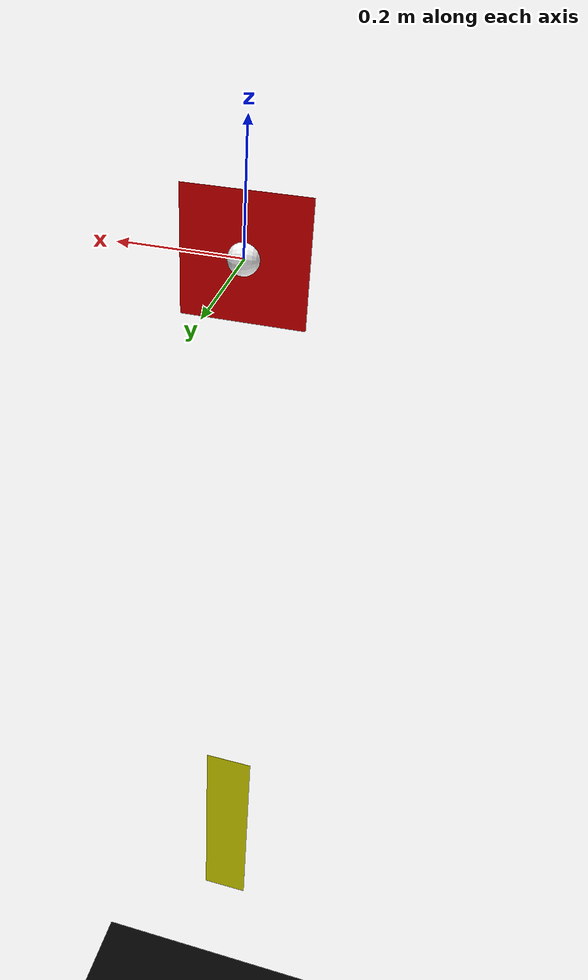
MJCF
<?xml version="1.0"?>
<mujoco>
    <compiler angle="radian"/>
    <option collision="all" timestep="0.002"/>
    <size njmax="1000" nconmax="400"/>
    <default class="main">
        <default class="locomotion-translation">
            <position ctrllimited="true" kp="10"/>
            <joint type="slide" stiffness="0.0" damping="1.5" armature="0.0" limited="true"/>
        </default>

        <default class="eye">
            <position ctrllimited="true" kp="10"/>
            <joint type="hinge" stiffness="0.0" damping="0.05" armature="0.0" limited="true"/>
        </default>

        <default class="sign-translate">
            <position ctrllimited="true" kp="10"/>
            <joint type="slide" stiffness="0.0" damping="0.05" armature="0.0" limited="true"/>
        </default>

        <default class="sign-rotate">
            <position ctrllimited="true" kp="10"/>
            <joint type="hinge" stiffness="0.0" damping="0.05" armature="0.0" limited="true"/>
        </default>
    </default>
    <asset>
        <texture type="skybox" builtin="gradient" rgb1="1 1 1" rgb2="0.6 0.8 1" width="256" height="256"/>
        <texture type="cube" name="blue-eye" file="assets/blue_eye_texture_circle.png" gridsize="3 4" gridlayout=".U..LFRB.D.."/>
        <material name="blue-eye" texture="blue-eye" texuniform="true"/>
        <mesh name="eye" file="assets/basic_eye_2.stl" scale="0.05 0.05 0.05"/>
    </asset>
    <worldbody>
        <light name="scene_directional_light" directional="true" castshadow="false" cutoff="4" exponent="12"
               diffuse="1 1 1" specular="0 0 0" pos=".9 .3 2.5"/>

        <camera name="env" pos="3 -3 0.5" euler="1.4 0.5 0.05"/>

        <body name="fixed-head-body" pos="0 0 0">
            <body name="eye" pos="0 0 0" quat="0.7071068 0.7071068 0 0">
                <geom name="eye" type="sphere" size="0.025" material="blue-eye" rgba="1 1 1 1" quat="0.6625191 0.0130711 0.7488417 0.0115643"/>
                <camera name="eye" fovy="90"/>
                <joint name="eye-joint-x" class="eye" axis="1 0 0" range="-1.6 0.75"/>
                <joint name="eye-joint-y" class="eye" axis="0 1 0" range="-2 2"/>
                <site name="rangefinder-site" quat="0 0 1 0"/>
            </body>
            <geom name="body-trunk" pos="0 0 -1.4" type="box" size="0.05 0.00001 0.25" rgba="1 1 0 1" />
            <joint name="body-joint-y" class="locomotion-translation" axis="0 1 0" range="0 12"/>
        </body>

        <body name="straight-walk-path" pos="0 5 0">
            <geom name="straight-path" type="box" pos="0 0 -2" size="1 5 0.0000001" rgba="0 0 0 1"/>
        </body>

        <body name="movable-sign" pos="0 0 0">
            <geom name="destination-sign" type="box" pos="0 0 0" size="0.1 0.00001 0.1" rgba="1 0 0 1"/>
            <joint name="sign-joint-x" class="sign-translate" axis="1 0 0" range="-1 1"/>
            <joint name="sign-joint-y" class="sign-translate" axis="0 1 0" range="0 10"/>
            <joint name="sign-joint-z" class="sign-translate" axis="0 0 1" range="-0.5 0.5"/>
            <joint name="sign-joint-hinge-z" class="sign-rotate" axis="0 0 1" range="-1 1"/>
        </body>
    </worldbody>
    <actuator>
        <position name="eye-x-motor" joint="eye-joint-x" class="eye" ctrlrange="-1.6 0.75"/>
        <position name="eye-y-motor" joint="eye-joint-y" class="eye" ctrlrange="-2 2"/>
        <position name="body-y-motor" joint="body-joint-y" class="locomotion-translation" ctrlrange="0 12"/>
        <position name="sign-x-motor" joint="sign-joint-x" class="sign-translate" ctrlrange="-1 1"/>
        <position name="sign-y-motor" joint="sign-joint-y" class="sign-translate" ctrlrange="0 10"/>
        <position name="sign-z-motor" joint="sign-joint-z" class="sign-translate" ctrlrange="-0.5 0.5"/>
        <position name="sign-z-motor-hinge" joint="sign-joint-hinge-z" class="sign-rotate" ctrlrange="-1 1"/>
    </actuator>
    <sensor>
        <rangefinder name="rangefinder" site="rangefinder-site"/>
    </sensor>
</mujoco>
